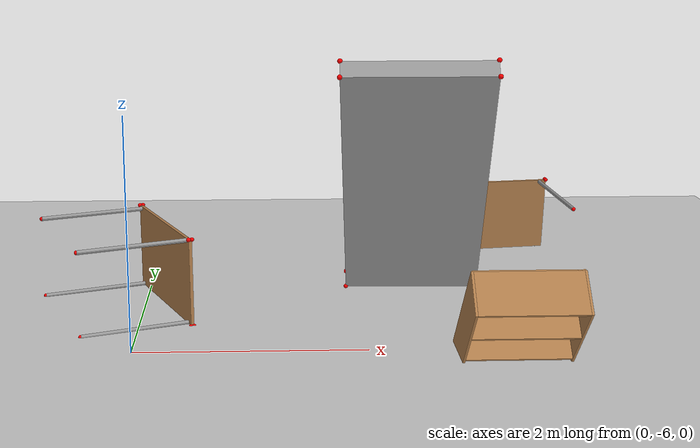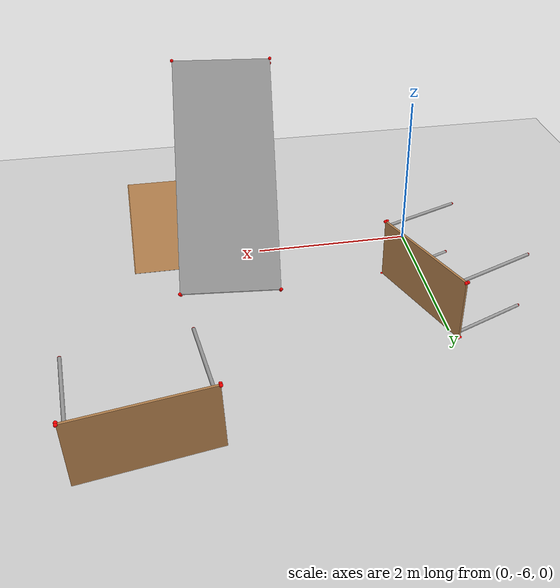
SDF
<sdf version="1.7">
 <world name="tracked_mid360_fastlio_collapse_microdeform_world">
  <model name="ground_plane">
   <static>1</static>
   <link name="link">
    <collision name="collision">
     <laser_retro>24</laser_retro>
     <geometry><plane><normal>0 0 1</normal><size>100 100</size></plane></geometry>
     <surface>
      <contact>
       <collide_bitmask>65535</collide_bitmask>
       <ode><kp>1e+06</kp><kd>10</kd><max_vel>0.05</max_vel><min_depth>0.001</min_depth></ode>
      </contact>
      <friction><ode><mu>2</mu><mu2>1.5</mu2></ode></friction>
     </surface>
     <max_contacts>20</max_contacts>
    </collision>
    <visual name="visual">
     <cast_shadows>0</cast_shadows>
     <geometry><plane><normal>0 0 1</normal><size>100 100</size></plane></geometry>
     <material>
      <script><uri>file://media/materials/scripts/gazebo.material</uri><name>Gazebo/Grey</name></script>
     </material>
    </visual>
   </link>
  </model>
  <model name="bookshelf_0">
   <static>1</static>
   <link name="link">
    <inertial><mass>1</mass></inertial>
    <collision name="back">
     <laser_retro>15</laser_retro>
     <pose>0 0.005 0.6 0 -0 0</pose>
     <geometry><box><size>0.9 0.01 1.2</size></box></geometry>
    </collision>
    <visual name="visual1">
     <pose>0 0.005 0.6 0 -0 0</pose>
     <geometry><box><size>0.9 0.01 1.2</size></box></geometry>
     <material>
      <script><uri>file://media/materials/scripts/gazebo.material</uri><name>Gazebo/Wood</name></script>
     </material>
    </visual>
    <collision name="left_side">
     <laser_retro>15</laser_retro>
     <pose>0.45 -0.195 0.6 0 -0 0</pose>
     <geometry><box><size>0.02 0.4 1.2</size></box></geometry>
    </collision>
    <visual name="visual2">
     <pose>0.45 -0.195 0.6 0 -0 0</pose>
     <geometry><box><size>0.02 0.4 1.2</size></box></geometry>
     <material>
      <script><uri>file://media/materials/scripts/gazebo.material</uri><name>Gazebo/Wood</name></script>
     </material>
    </visual>
    <collision name="right_side">
     <laser_retro>15</laser_retro>
     <pose>-0.45 -0.195 0.6 0 -0 0</pose>
     <geometry><box><size>0.02 0.4 1.2</size></box></geometry>
    </collision>
    <visual name="visual3">
     <pose>-0.45 -0.195 0.6 0 -0 0</pose>
     <geometry><box><size>0.02 0.4 1.2</size></box></geometry>
     <material>
      <script><uri>file://media/materials/scripts/gazebo.material</uri><name>Gazebo/Wood</name></script>
     </material>
    </visual>
    <collision name="bottom">
     <laser_retro>15</laser_retro>
     <pose>0 -0.195 0.03 0 -0 0</pose>
     <geometry><box><size>0.88 0.4 0.06</size></box></geometry>
    </collision>
    <visual name="visual4">
     <pose>0 -0.195 0.03 0 -0 0</pose>
     <geometry><box><size>0.88 0.4 0.06</size></box></geometry>
     <material>
      <script><uri>file://media/materials/scripts/gazebo.material</uri><name>Gazebo/Wood</name></script>
     </material>
    </visual>
    <collision name="top">
     <laser_retro>15</laser_retro>
     <pose>0 -0.195 1.19 0 -0 0</pose>
     <geometry><box><size>0.88 0.4 0.02</size></box></geometry>
    </collision>
    <visual name="visual5">
     <pose>0 -0.195 1.19 0 -0 0</pose>
     <geometry><box><size>0.88 0.4 0.02</size></box></geometry>
     <material>
      <script><uri>file://media/materials/scripts/gazebo.material</uri><name>Gazebo/Wood</name></script>
     </material>
    </visual>
    <collision name="low_shelf">
     <laser_retro>15</laser_retro>
     <pose>0 -0.195 0.43 0 -0 0</pose>
     <geometry><box><size>0.88 0.4 0.02</size></box></geometry>
    </collision>
    <visual name="visual6">
     <pose>0 -0.195 0.43 0 -0 0</pose>
     <geometry><box><size>0.88 0.4 0.02</size></box></geometry>
     <material>
      <script><uri>file://media/materials/scripts/gazebo.material</uri><name>Gazebo/Wood</name></script>
     </material>
    </visual>
    <collision name="high_shelf">
     <laser_retro>15</laser_retro>
     <pose>0 -0.195 0.8 0 -0 0</pose>
     <geometry><box><size>0.88 0.4 0.02</size></box></geometry>
    </collision>
    <visual name="visual7">
     <pose>0 -0.195 0.8 0 -0 0</pose>
     <geometry><box><size>0.88 0.4 0.02</size></box></geometry>
     <material>
      <script><uri>file://media/materials/scripts/gazebo.material</uri><name>Gazebo/Wood</name></script>
     </material>
    </visual>
   </link>
   <pose>3.19942 -5.78488 -0.005007 0.777348 -0 0</pose>
  </model>
  <model name="table">
   <static>0</static>
   <link name="link">
    <collision name="surface">
     <laser_retro>4</laser_retro>
     <pose>0 0 1 0 -0 0</pose>
     <geometry><box><size>1.5 0.8 0.03</size></box></geometry>
     <surface><friction><ode><mu>0.6</mu><mu2>0.6</mu2></ode></friction></surface>
    </collision>
    <visual name="visual1">
     <pose>0 0 1 0 -0 0</pose>
     <geometry><box><size>1.5 0.8 0.03</size></box></geometry>
     <material>
      <script><uri>file://media/materials/scripts/gazebo.material</uri><name>Gazebo/Wood</name></script>
     </material>
    </visual>
    <collision name="front_left_leg">
     <laser_retro>4</laser_retro>
     <pose>0.68 0.38 0.5 0 -0 0</pose>
     <geometry><cylinder><radius>0.02</radius><length>1</length></cylinder></geometry>
    </collision>
    <visual name="front_left_leg">
     <pose>0.68 0.38 0.5 0 -0 0</pose>
     <geometry><cylinder><radius>0.02</radius><length>1</length></cylinder></geometry>
     <material>
      <script><uri>file://media/materials/scripts/gazebo.material</uri><name>Gazebo/Grey</name></script>
     </material>
    </visual>
    <collision name="front_right_leg">
     <laser_retro>4</laser_retro>
     <pose>0.68 -0.38 0.5 0 -0 0</pose>
     <geometry><cylinder><radius>0.02</radius><length>1</length></cylinder></geometry>
    </collision>
    <visual name="front_right_leg">
     <pose>0.68 -0.38 0.5 0 -0 0</pose>
     <geometry><cylinder><radius>0.02</radius><length>1</length></cylinder></geometry>
     <material>
      <script><uri>file://media/materials/scripts/gazebo.material</uri><name>Gazebo/Grey</name></script>
     </material>
    </visual>
    <collision name="back_right_leg">
     <laser_retro>4</laser_retro>
     <pose>-0.68 -0.38 0.5 0 -0 0</pose>
     <geometry><cylinder><radius>0.02</radius><length>1</length></cylinder></geometry>
    </collision>
    <visual name="back_right_leg">
     <pose>-0.68 -0.38 0.5 0 -0 0</pose>
     <geometry><cylinder><radius>0.02</radius><length>1</length></cylinder></geometry>
     <material>
      <script><uri>file://media/materials/scripts/gazebo.material</uri><name>Gazebo/Grey</name></script>
     </material>
    </visual>
    <collision name="back_left_leg">
     <laser_retro>4</laser_retro>
     <pose>-0.68 0.38 0.5 0 -0 0</pose>
     <geometry><cylinder><radius>0.02</radius><length>1</length></cylinder></geometry>
    </collision>
    <visual name="back_left_leg">
     <pose>-0.68 0.38 0.5 0 -0 0</pose>
     <geometry><cylinder><radius>0.02</radius><length>1</length></cylinder></geometry>
     <material>
      <script><uri>file://media/materials/scripts/gazebo.material</uri><name>Gazebo/Grey</name></script>
     </material>
    </visual>
    <visual name="ground_truth_marker_v_000">
     <pose>-0.75 -0.4 0.985 0 -0 0</pose>
     <geometry><sphere><radius>0.02</radius></sphere></geometry>
     <material><ambient>1 0 0 1</ambient><diffuse>1 0 0 1</diffuse><emissive>1 0 0 1</emissive></material>
     <cast_shadows>0</cast_shadows>
    </visual>
    <visual name="ground_truth_marker_v_001">
     <pose>-0.75 -0.4 1.015 0 -0 0</pose>
     <geometry><sphere><radius>0.02</radius></sphere></geometry>
     <material><ambient>1 0 0 1</ambient><diffuse>1 0 0 1</diffuse><emissive>1 0 0 1</emissive></material>
     <cast_shadows>0</cast_shadows>
    </visual>
    <visual name="ground_truth_marker_v_002">
     <pose>-0.75 0.4 0.985 0 -0 0</pose>
     <geometry><sphere><radius>0.02</radius></sphere></geometry>
     <material><ambient>1 0 0 1</ambient><diffuse>1 0 0 1</diffuse><emissive>1 0 0 1</emissive></material>
     <cast_shadows>0</cast_shadows>
    </visual>
    <visual name="ground_truth_marker_v_003">
     <pose>-0.75 0.4 1.015 0 -0 0</pose>
     <geometry><sphere><radius>0.02</radius></sphere></geometry>
     <material><ambient>1 0 0 1</ambient><diffuse>1 0 0 1</diffuse><emissive>1 0 0 1</emissive></material>
     <cast_shadows>0</cast_shadows>
    </visual>
    <visual name="ground_truth_marker_v_004">
     <pose>0.75 -0.4 0.985 0 -0 0</pose>
     <geometry><sphere><radius>0.02</radius></sphere></geometry>
     <material><ambient>1 0 0 1</ambient><diffuse>1 0 0 1</diffuse><emissive>1 0 0 1</emissive></material>
     <cast_shadows>0</cast_shadows>
    </visual>
    <visual name="ground_truth_marker_v_005">
     <pose>0.75 -0.4 1.015 0 -0 0</pose>
     <geometry><sphere><radius>0.02</radius></sphere></geometry>
     <material><ambient>1 0 0 1</ambient><diffuse>1 0 0 1</diffuse><emissive>1 0 0 1</emissive></material>
     <cast_shadows>0</cast_shadows>
    </visual>
    <visual name="ground_truth_marker_v_006">
     <pose>0.75 0.4 0.985 0 -0 0</pose>
     <geometry><sphere><radius>0.02</radius></sphere></geometry>
     <material><ambient>1 0 0 1</ambient><diffuse>1 0 0 1</diffuse><emissive>1 0 0 1</emissive></material>
     <cast_shadows>0</cast_shadows>
    </visual>
    <visual name="ground_truth_marker_v_007">
     <pose>0.75 0.4 1.015 0 -0 0</pose>
     <geometry><sphere><radius>0.02</radius></sphere></geometry>
     <material><ambient>1 0 0 1</ambient><diffuse>1 0 0 1</diffuse><emissive>1 0 0 1</emissive></material>
     <cast_shadows>0</cast_shadows>
    </visual>
    <visual name="ground_truth_marker_v_008">
     <pose>0.68 0.38 0 0 -0 0</pose>
     <geometry><sphere><radius>0.02</radius></sphere></geometry>
     <material><ambient>1 0 0 1</ambient><diffuse>1 0 0 1</diffuse><emissive>1 0 0 1</emissive></material>
     <cast_shadows>0</cast_shadows>
    </visual>
    <visual name="ground_truth_marker_v_009">
     <pose>0.68 -0.38 0 0 -0 0</pose>
     <geometry><sphere><radius>0.02</radius></sphere></geometry>
     <material><ambient>1 0 0 1</ambient><diffuse>1 0 0 1</diffuse><emissive>1 0 0 1</emissive></material>
     <cast_shadows>0</cast_shadows>
    </visual>
    <visual name="ground_truth_marker_v_010">
     <pose>-0.68 -0.38 0 0 -0 0</pose>
     <geometry><sphere><radius>0.02</radius></sphere></geometry>
     <material><ambient>1 0 0 1</ambient><diffuse>1 0 0 1</diffuse><emissive>1 0 0 1</emissive></material>
     <cast_shadows>0</cast_shadows>
    </visual>
    <visual name="ground_truth_marker_v_011">
     <pose>-0.68 0.38 0 0 -0 0</pose>
     <geometry><sphere><radius>0.02</radius></sphere></geometry>
     <material><ambient>1 0 0 1</ambient><diffuse>1 0 0 1</diffuse><emissive>1 0 0 1</emissive></material>
     <cast_shadows>0</cast_shadows>
    </visual>
    <kinematic>1</kinematic>
    <inertial>
     <inertia><ixx>1</ixx><ixy>0</ixy><ixz>0</ixz><iyy>1</iyy><iyz>0</iyz><izz>1</izz></inertia>
     <mass>1</mass>
    </inertial>
   </link>
   <link name="ground_truth_v_000">
    <pose>-0.75 -0.4 0.985 0 -0 0</pose>
    <inertial>
     <mass>1e-06</mass>
     <inertia><ixx>1e-12</ixx><ixy>0</ixy><ixz>0</ixz><iyy>1e-12</iyy><iyz>0</iyz><izz>1e-12</izz></inertia>
    </inertial>
   </link>
   <link name="ground_truth_v_001">
    <pose>-0.75 -0.4 1.015 0 -0 0</pose>
    <inertial>
     <mass>1e-06</mass>
     <inertia><ixx>1e-12</ixx><ixy>0</ixy><ixz>0</ixz><iyy>1e-12</iyy><iyz>0</iyz><izz>1e-12</izz></inertia>
    </inertial>
   </link>
   <link name="ground_truth_v_002">
    <pose>-0.75 0.4 0.985 0 -0 0</pose>
    <inertial>
     <mass>1e-06</mass>
     <inertia><ixx>1e-12</ixx><ixy>0</ixy><ixz>0</ixz><iyy>1e-12</iyy><iyz>0</iyz><izz>1e-12</izz></inertia>
    </inertial>
   </link>
   <link name="ground_truth_v_003">
    <pose>-0.75 0.4 1.015 0 -0 0</pose>
    <inertial>
     <mass>1e-06</mass>
     <inertia><ixx>1e-12</ixx><ixy>0</ixy><ixz>0</ixz><iyy>1e-12</iyy><iyz>0</iyz><izz>1e-12</izz></inertia>
    </inertial>
   </link>
   <link name="ground_truth_v_004">
    <pose>0.75 -0.4 0.985 0 -0 0</pose>
    <inertial>
     <mass>1e-06</mass>
     <inertia><ixx>1e-12</ixx><ixy>0</ixy><ixz>0</ixz><iyy>1e-12</iyy><iyz>0</iyz><izz>1e-12</izz></inertia>
    </inertial>
   </link>
   <link name="ground_truth_v_005">
    <pose>0.75 -0.4 1.015 0 -0 0</pose>
    <inertial>
     <mass>1e-06</mass>
     <inertia><ixx>1e-12</ixx><ixy>0</ixy><ixz>0</ixz><iyy>1e-12</iyy><iyz>0</iyz><izz>1e-12</izz></inertia>
    </inertial>
   </link>
   <link name="ground_truth_v_006">
    <pose>0.75 0.4 0.985 0 -0 0</pose>
    <inertial>
     <mass>1e-06</mass>
     <inertia><ixx>1e-12</ixx><ixy>0</ixy><ixz>0</ixz><iyy>1e-12</iyy><iyz>0</iyz><izz>1e-12</izz></inertia>
    </inertial>
   </link>
   <link name="ground_truth_v_007">
    <pose>0.75 0.4 1.015 0 -0 0</pose>
    <inertial>
     <mass>1e-06</mass>
     <inertia><ixx>1e-12</ixx><ixy>0</ixy><ixz>0</ixz><iyy>1e-12</iyy><iyz>0</iyz><izz>1e-12</izz></inertia>
    </inertial>
   </link>
   <link name="ground_truth_v_008">
    <pose>0.68 0.38 0 0 -0 0</pose>
    <inertial>
     <mass>1e-06</mass>
     <inertia><ixx>1e-12</ixx><ixy>0</ixy><ixz>0</ixz><iyy>1e-12</iyy><iyz>0</iyz><izz>1e-12</izz></inertia>
    </inertial>
   </link>
   <link name="ground_truth_v_009">
    <pose>0.68 -0.38 0 0 -0 0</pose>
    <inertial>
     <mass>1e-06</mass>
     <inertia><ixx>1e-12</ixx><ixy>0</ixy><ixz>0</ixz><iyy>1e-12</iyy><iyz>0</iyz><izz>1e-12</izz></inertia>
    </inertial>
   </link>
   <link name="ground_truth_v_010">
    <pose>-0.68 -0.38 0 0 -0 0</pose>
    <inertial>
     <mass>1e-06</mass>
     <inertia><ixx>1e-12</ixx><ixy>0</ixy><ixz>0</ixz><iyy>1e-12</iyy><iyz>0</iyz><izz>1e-12</izz></inertia>
    </inertial>
   </link>
   <link name="ground_truth_v_011">
    <pose>-0.68 0.38 0 0 -0 0</pose>
    <inertial>
     <mass>1e-06</mass>
     <inertia><ixx>1e-12</ixx><ixy>0</ixy><ixz>0</ixz><iyy>1e-12</iyy><iyz>0</iyz><izz>1e-12</izz></inertia>
    </inertial>
   </link>
   <joint name="ground_truth_v_000_fixed_joint" type="fixed">
    <parent>link</parent>
    <child>ground_truth_v_000</child>
   </joint>
   <joint name="ground_truth_v_001_fixed_joint" type="fixed">
    <parent>link</parent>
    <child>ground_truth_v_001</child>
   </joint>
   <joint name="ground_truth_v_002_fixed_joint" type="fixed">
    <parent>link</parent>
    <child>ground_truth_v_002</child>
   </joint>
   <joint name="ground_truth_v_003_fixed_joint" type="fixed">
    <parent>link</parent>
    <child>ground_truth_v_003</child>
   </joint>
   <joint name="ground_truth_v_004_fixed_joint" type="fixed">
    <parent>link</parent>
    <child>ground_truth_v_004</child>
   </joint>
   <joint name="ground_truth_v_005_fixed_joint" type="fixed">
    <parent>link</parent>
    <child>ground_truth_v_005</child>
   </joint>
   <joint name="ground_truth_v_006_fixed_joint" type="fixed">
    <parent>link</parent>
    <child>ground_truth_v_006</child>
   </joint>
   <joint name="ground_truth_v_007_fixed_joint" type="fixed">
    <parent>link</parent>
    <child>ground_truth_v_007</child>
   </joint>
   <joint name="ground_truth_v_008_fixed_joint" type="fixed">
    <parent>link</parent>
    <child>ground_truth_v_008</child>
   </joint>
   <joint name="ground_truth_v_009_fixed_joint" type="fixed">
    <parent>link</parent>
    <child>ground_truth_v_009</child>
   </joint>
   <joint name="ground_truth_v_010_fixed_joint" type="fixed">
    <parent>link</parent>
    <child>ground_truth_v_010</child>
   </joint>
   <joint name="ground_truth_v_011_fixed_joint" type="fixed">
    <parent>link</parent>
    <child>ground_truth_v_011</child>
   </joint>
   <pose>3.59928 -3.65229 0.265314 -1.48218 0 0.154319</pose>
  </model>
  <model name="lzg_bianwood">
   <link name="link_0">
    <inertial>
     <mass>0.567947</mass>
     <inertia>
      <ixx>0.387852</ixx>
      <ixy>0</ixy>
      <ixz>0</ixz>
      <iyy>0.454669</iyy>
      <iyz>0</iyz>
      <izz>0.0694091</izz>
     </inertia>
    </inertial>
    <pose>0 -3e-06 -0 0.737123 -0 0</pose>
    <visual name="visual">
     <geometry><box><size>1.19964 0.165479 2.85787</size></box></geometry>
     <material>
      <lighting>1</lighting>
      <script><uri>file://media/materials/scripts/gazebo.material</uri><name>Gazebo/Grey</name></script>
      <shader type="pixel"/>
     </material>
    </visual>
    <collision name="collision">
     <laser_retro>9</laser_retro>
     <geometry><box><size>1.19964 0.165479 2.85787</size></box></geometry>
     <surface>
      <friction>
       <ode><mu>1</mu><mu2>1</mu2><fdir1>0 0 0</fdir1><slip1>0</slip1><slip2>0</slip2></ode>
       <torsional>
        <coefficient>1</coefficient>
        <patch_radius>0</patch_radius>
        <surface_radius>0</surface_radius>
        <use_patch_radius>1</use_patch_radius>
        <ode><slip>0</slip></ode>
       </torsional>
      </friction>
      <bounce><restitution_coefficient>0</restitution_coefficient><threshold>1e+06</threshold></bounce>
      <contact>
       <collide_without_contact>0</collide_without_contact>
       <collide_without_contact_bitmask>1</collide_without_contact_bitmask>
       <collide_bitmask>1</collide_bitmask>
       <ode>
        <soft_cfm>0</soft_cfm>
        <soft_erp>0.2</soft_erp>
        <kp>1e+13</kp>
        <kd>1</kd>
        <max_vel>0.01</max_vel>
        <min_depth>0</min_depth>
       </ode>
       <bullet>
        <split_impulse>1</split_impulse>
        <split_impulse_penetration_threshold>-0.01</split_impulse_penetration_threshold>
        <soft_cfm>0</soft_cfm>
        <soft_erp>0.2</soft_erp>
        <kp>1e+13</kp>
        <kd>1</kd>
       </bullet>
      </contact>
     </surface>
    </collision>
    <visual name="ground_truth_marker_v_000">
     <pose>-0.59982 -0.08274 -1.42894 0 -0 0</pose>
     <geometry><sphere><radius>0.02</radius></sphere></geometry>
     <material><ambient>1 0 0 1</ambient><diffuse>1 0 0 1</diffuse><emissive>1 0 0 1</emissive></material>
     <cast_shadows>0</cast_shadows>
    </visual>
    <visual name="ground_truth_marker_v_001">
     <pose>-0.59982 -0.08274 1.42894 0 -0 0</pose>
     <geometry><sphere><radius>0.02</radius></sphere></geometry>
     <material><ambient>1 0 0 1</ambient><diffuse>1 0 0 1</diffuse><emissive>1 0 0 1</emissive></material>
     <cast_shadows>0</cast_shadows>
    </visual>
    <visual name="ground_truth_marker_v_002">
     <pose>-0.59982 0.08274 -1.42894 0 -0 0</pose>
     <geometry><sphere><radius>0.02</radius></sphere></geometry>
     <material><ambient>1 0 0 1</ambient><diffuse>1 0 0 1</diffuse><emissive>1 0 0 1</emissive></material>
     <cast_shadows>0</cast_shadows>
    </visual>
    <visual name="ground_truth_marker_v_003">
     <pose>-0.59982 0.08274 1.42894 0 -0 0</pose>
     <geometry><sphere><radius>0.02</radius></sphere></geometry>
     <material><ambient>1 0 0 1</ambient><diffuse>1 0 0 1</diffuse><emissive>1 0 0 1</emissive></material>
     <cast_shadows>0</cast_shadows>
    </visual>
    <visual name="ground_truth_marker_v_004">
     <pose>0.59982 -0.08274 -1.42894 0 -0 0</pose>
     <geometry><sphere><radius>0.02</radius></sphere></geometry>
     <material><ambient>1 0 0 1</ambient><diffuse>1 0 0 1</diffuse><emissive>1 0 0 1</emissive></material>
     <cast_shadows>0</cast_shadows>
    </visual>
    <visual name="ground_truth_marker_v_005">
     <pose>0.59982 -0.08274 1.42894 0 -0 0</pose>
     <geometry><sphere><radius>0.02</radius></sphere></geometry>
     <material><ambient>1 0 0 1</ambient><diffuse>1 0 0 1</diffuse><emissive>1 0 0 1</emissive></material>
     <cast_shadows>0</cast_shadows>
    </visual>
    <visual name="ground_truth_marker_v_006">
     <pose>0.59982 0.08274 -1.42894 0 -0 0</pose>
     <geometry><sphere><radius>0.02</radius></sphere></geometry>
     <material><ambient>1 0 0 1</ambient><diffuse>1 0 0 1</diffuse><emissive>1 0 0 1</emissive></material>
     <cast_shadows>0</cast_shadows>
    </visual>
    <visual name="ground_truth_marker_v_007">
     <pose>0.59982 0.08274 1.42894 0 -0 0</pose>
     <geometry><sphere><radius>0.02</radius></sphere></geometry>
     <material><ambient>1 0 0 1</ambient><diffuse>1 0 0 1</diffuse><emissive>1 0 0 1</emissive></material>
     <cast_shadows>0</cast_shadows>
    </visual>
    <kinematic>1</kinematic>
   </link>
   <link name="ground_truth_v_000">
    <pose>-0.59982 0.89921 -1.1136 0 -0 0</pose>
    <inertial>
     <mass>1e-06</mass>
     <inertia><ixx>1e-12</ixx><ixy>0</ixy><ixz>0</ixz><iyy>1e-12</iyy><iyz>0</iyz><izz>1e-12</izz></inertia>
    </inertial>
   </link>
   <link name="ground_truth_v_001">
    <pose>-0.59982 -1.02174 1.00238 0 -0 0</pose>
    <inertial>
     <mass>1e-06</mass>
     <inertia><ixx>1e-12</ixx><ixy>0</ixy><ixz>0</ixz><iyy>1e-12</iyy><iyz>0</iyz><izz>1e-12</izz></inertia>
    </inertial>
   </link>
   <link name="ground_truth_v_002">
    <pose>-0.59982 1.02173 -1.00238 0 -0 0</pose>
    <inertial>
     <mass>1e-06</mass>
     <inertia><ixx>1e-12</ixx><ixy>0</ixy><ixz>0</ixz><iyy>1e-12</iyy><iyz>0</iyz><izz>1e-12</izz></inertia>
    </inertial>
   </link>
   <link name="ground_truth_v_003">
    <pose>-0.59982 -0.899216 1.1136 0 -0 0</pose>
    <inertial>
     <mass>1e-06</mass>
     <inertia><ixx>1e-12</ixx><ixy>0</ixy><ixz>0</ixz><iyy>1e-12</iyy><iyz>0</iyz><izz>1e-12</izz></inertia>
    </inertial>
   </link>
   <link name="ground_truth_v_004">
    <pose>0.59982 0.89921 -1.1136 0 -0 0</pose>
    <inertial>
     <mass>1e-06</mass>
     <inertia><ixx>1e-12</ixx><ixy>0</ixy><ixz>0</ixz><iyy>1e-12</iyy><iyz>0</iyz><izz>1e-12</izz></inertia>
    </inertial>
   </link>
   <link name="ground_truth_v_005">
    <pose>0.59982 -1.02174 1.00238 0 -0 0</pose>
    <inertial>
     <mass>1e-06</mass>
     <inertia><ixx>1e-12</ixx><ixy>0</ixy><ixz>0</ixz><iyy>1e-12</iyy><iyz>0</iyz><izz>1e-12</izz></inertia>
    </inertial>
   </link>
   <link name="ground_truth_v_006">
    <pose>0.59982 1.02173 -1.00238 0 -0 0</pose>
    <inertial>
     <mass>1e-06</mass>
     <inertia><ixx>1e-12</ixx><ixy>0</ixy><ixz>0</ixz><iyy>1e-12</iyy><iyz>0</iyz><izz>1e-12</izz></inertia>
    </inertial>
   </link>
   <link name="ground_truth_v_007">
    <pose>0.59982 -0.899216 1.1136 0 -0 0</pose>
    <inertial>
     <mass>1e-06</mass>
     <inertia><ixx>1e-12</ixx><ixy>0</ixy><ixz>0</ixz><iyy>1e-12</iyy><iyz>0</iyz><izz>1e-12</izz></inertia>
    </inertial>
   </link>
   <joint name="ground_truth_v_000_fixed_joint" type="fixed">
    <parent>link_0</parent>
    <child>ground_truth_v_000</child>
   </joint>
   <joint name="ground_truth_v_001_fixed_joint" type="fixed">
    <parent>link_0</parent>
    <child>ground_truth_v_001</child>
   </joint>
   <joint name="ground_truth_v_002_fixed_joint" type="fixed">
    <parent>link_0</parent>
    <child>ground_truth_v_002</child>
   </joint>
   <joint name="ground_truth_v_003_fixed_joint" type="fixed">
    <parent>link_0</parent>
    <child>ground_truth_v_003</child>
   </joint>
   <joint name="ground_truth_v_004_fixed_joint" type="fixed">
    <parent>link_0</parent>
    <child>ground_truth_v_004</child>
   </joint>
   <joint name="ground_truth_v_005_fixed_joint" type="fixed">
    <parent>link_0</parent>
    <child>ground_truth_v_005</child>
   </joint>
   <joint name="ground_truth_v_006_fixed_joint" type="fixed">
    <parent>link_0</parent>
    <child>ground_truth_v_006</child>
   </joint>
   <joint name="ground_truth_v_007_fixed_joint" type="fixed">
    <parent>link_0</parent>
    <child>ground_truth_v_007</child>
   </joint>
   <static>0</static>
   <pose>2.38843 -5.74498 1.36167 -0.025643 -0.009727 -0.080351</pose>
  </model>
  <model name="table_clone">
   <static>0</static>
   <link name="link">
    <collision name="surface">
     <laser_retro>7</laser_retro>
     <pose>0 0 1 0 -0 0</pose>
     <geometry><box><size>1.5 0.8 0.03</size></box></geometry>
     <surface><friction><ode><mu>0.6</mu><mu2>0.6</mu2></ode></friction></surface>
    </collision>
    <visual name="visual1">
     <pose>0 0 1 0 -0 0</pose>
     <geometry><box><size>1.5 0.8 0.03</size></box></geometry>
     <material>
      <script><uri>file://media/materials/scripts/gazebo.material</uri><name>Gazebo/Wood</name></script>
     </material>
    </visual>
    <collision name="front_left_leg">
     <laser_retro>7</laser_retro>
     <pose>0.68 0.38 0.5 0 -0 0</pose>
     <geometry><cylinder><radius>0.02</radius><length>1</length></cylinder></geometry>
    </collision>
    <visual name="front_left_leg">
     <pose>0.68 0.38 0.5 0 -0 0</pose>
     <geometry><cylinder><radius>0.02</radius><length>1</length></cylinder></geometry>
     <material>
      <script><uri>file://media/materials/scripts/gazebo.material</uri><name>Gazebo/Grey</name></script>
     </material>
    </visual>
    <collision name="front_right_leg">
     <laser_retro>7</laser_retro>
     <pose>0.68 -0.38 0.5 0 -0 0</pose>
     <geometry><cylinder><radius>0.02</radius><length>1</length></cylinder></geometry>
    </collision>
    <visual name="front_right_leg">
     <pose>0.68 -0.38 0.5 0 -0 0</pose>
     <geometry><cylinder><radius>0.02</radius><length>1</length></cylinder></geometry>
     <material>
      <script><uri>file://media/materials/scripts/gazebo.material</uri><name>Gazebo/Grey</name></script>
     </material>
    </visual>
    <collision name="back_right_leg">
     <laser_retro>7</laser_retro>
     <pose>-0.68 -0.38 0.5 0 -0 0</pose>
     <geometry><cylinder><radius>0.02</radius><length>1</length></cylinder></geometry>
    </collision>
    <visual name="back_right_leg">
     <pose>-0.68 -0.38 0.5 0 -0 0</pose>
     <geometry><cylinder><radius>0.02</radius><length>1</length></cylinder></geometry>
     <material>
      <script><uri>file://media/materials/scripts/gazebo.material</uri><name>Gazebo/Grey</name></script>
     </material>
    </visual>
    <collision name="back_left_leg">
     <laser_retro>7</laser_retro>
     <pose>-0.68 0.38 0.5 0 -0 0</pose>
     <geometry><cylinder><radius>0.02</radius><length>1</length></cylinder></geometry>
    </collision>
    <visual name="back_left_leg">
     <pose>-0.68 0.38 0.5 0 -0 0</pose>
     <geometry><cylinder><radius>0.02</radius><length>1</length></cylinder></geometry>
     <material>
      <script><uri>file://media/materials/scripts/gazebo.material</uri><name>Gazebo/Grey</name></script>
     </material>
    </visual>
    <visual name="ground_truth_marker_v_000">
     <pose>-0.75 -0.4 0.985 0 -0 0</pose>
     <geometry><sphere><radius>0.02</radius></sphere></geometry>
     <material><ambient>1 0 0 1</ambient><diffuse>1 0 0 1</diffuse><emissive>1 0 0 1</emissive></material>
     <cast_shadows>0</cast_shadows>
    </visual>
    <visual name="ground_truth_marker_v_001">
     <pose>-0.75 -0.4 1.015 0 -0 0</pose>
     <geometry><sphere><radius>0.02</radius></sphere></geometry>
     <material><ambient>1 0 0 1</ambient><diffuse>1 0 0 1</diffuse><emissive>1 0 0 1</emissive></material>
     <cast_shadows>0</cast_shadows>
    </visual>
    <visual name="ground_truth_marker_v_002">
     <pose>-0.75 0.4 0.985 0 -0 0</pose>
     <geometry><sphere><radius>0.02</radius></sphere></geometry>
     <material><ambient>1 0 0 1</ambient><diffuse>1 0 0 1</diffuse><emissive>1 0 0 1</emissive></material>
     <cast_shadows>0</cast_shadows>
    </visual>
    <visual name="ground_truth_marker_v_003">
     <pose>-0.75 0.4 1.015 0 -0 0</pose>
     <geometry><sphere><radius>0.02</radius></sphere></geometry>
     <material><ambient>1 0 0 1</ambient><diffuse>1 0 0 1</diffuse><emissive>1 0 0 1</emissive></material>
     <cast_shadows>0</cast_shadows>
    </visual>
    <visual name="ground_truth_marker_v_004">
     <pose>0.75 -0.4 0.985 0 -0 0</pose>
     <geometry><sphere><radius>0.02</radius></sphere></geometry>
     <material><ambient>1 0 0 1</ambient><diffuse>1 0 0 1</diffuse><emissive>1 0 0 1</emissive></material>
     <cast_shadows>0</cast_shadows>
    </visual>
    <visual name="ground_truth_marker_v_005">
     <pose>0.75 -0.4 1.015 0 -0 0</pose>
     <geometry><sphere><radius>0.02</radius></sphere></geometry>
     <material><ambient>1 0 0 1</ambient><diffuse>1 0 0 1</diffuse><emissive>1 0 0 1</emissive></material>
     <cast_shadows>0</cast_shadows>
    </visual>
    <visual name="ground_truth_marker_v_006">
     <pose>0.75 0.4 0.985 0 -0 0</pose>
     <geometry><sphere><radius>0.02</radius></sphere></geometry>
     <material><ambient>1 0 0 1</ambient><diffuse>1 0 0 1</diffuse><emissive>1 0 0 1</emissive></material>
     <cast_shadows>0</cast_shadows>
    </visual>
    <visual name="ground_truth_marker_v_007">
     <pose>0.75 0.4 1.015 0 -0 0</pose>
     <geometry><sphere><radius>0.02</radius></sphere></geometry>
     <material><ambient>1 0 0 1</ambient><diffuse>1 0 0 1</diffuse><emissive>1 0 0 1</emissive></material>
     <cast_shadows>0</cast_shadows>
    </visual>
    <visual name="ground_truth_marker_v_008">
     <pose>0.68 0.38 0 0 -0 0</pose>
     <geometry><sphere><radius>0.02</radius></sphere></geometry>
     <material><ambient>1 0 0 1</ambient><diffuse>1 0 0 1</diffuse><emissive>1 0 0 1</emissive></material>
     <cast_shadows>0</cast_shadows>
    </visual>
    <visual name="ground_truth_marker_v_009">
     <pose>0.68 -0.38 0 0 -0 0</pose>
     <geometry><sphere><radius>0.02</radius></sphere></geometry>
     <material><ambient>1 0 0 1</ambient><diffuse>1 0 0 1</diffuse><emissive>1 0 0 1</emissive></material>
     <cast_shadows>0</cast_shadows>
    </visual>
    <visual name="ground_truth_marker_v_010">
     <pose>-0.68 -0.38 0 0 -0 0</pose>
     <geometry><sphere><radius>0.02</radius></sphere></geometry>
     <material><ambient>1 0 0 1</ambient><diffuse>1 0 0 1</diffuse><emissive>1 0 0 1</emissive></material>
     <cast_shadows>0</cast_shadows>
    </visual>
    <visual name="ground_truth_marker_v_011">
     <pose>-0.68 0.38 0 0 -0 0</pose>
     <geometry><sphere><radius>0.02</radius></sphere></geometry>
     <material><ambient>1 0 0 1</ambient><diffuse>1 0 0 1</diffuse><emissive>1 0 0 1</emissive></material>
     <cast_shadows>0</cast_shadows>
    </visual>
    <kinematic>1</kinematic>
    <inertial>
     <inertia><ixx>1</ixx><ixy>0</ixy><ixz>0</ixz><iyy>1</iyy><iyz>0</iyz><izz>1</izz></inertia>
     <mass>1</mass>
    </inertial>
   </link>
   <link name="ground_truth_v_000">
    <pose>-0.75 -0.4 0.985 0 -0 0</pose>
    <inertial>
     <mass>1e-06</mass>
     <inertia><ixx>1e-12</ixx><ixy>0</ixy><ixz>0</ixz><iyy>1e-12</iyy><iyz>0</iyz><izz>1e-12</izz></inertia>
    </inertial>
   </link>
   <link name="ground_truth_v_001">
    <pose>-0.75 -0.4 1.015 0 -0 0</pose>
    <inertial>
     <mass>1e-06</mass>
     <inertia><ixx>1e-12</ixx><ixy>0</ixy><ixz>0</ixz><iyy>1e-12</iyy><iyz>0</iyz><izz>1e-12</izz></inertia>
    </inertial>
   </link>
   <link name="ground_truth_v_002">
    <pose>-0.75 0.4 0.985 0 -0 0</pose>
    <inertial>
     <mass>1e-06</mass>
     <inertia><ixx>1e-12</ixx><ixy>0</ixy><ixz>0</ixz><iyy>1e-12</iyy><iyz>0</iyz><izz>1e-12</izz></inertia>
    </inertial>
   </link>
   <link name="ground_truth_v_003">
    <pose>-0.75 0.4 1.015 0 -0 0</pose>
    <inertial>
     <mass>1e-06</mass>
     <inertia><ixx>1e-12</ixx><ixy>0</ixy><ixz>0</ixz><iyy>1e-12</iyy><iyz>0</iyz><izz>1e-12</izz></inertia>
    </inertial>
   </link>
   <link name="ground_truth_v_004">
    <pose>0.75 -0.4 0.985 0 -0 0</pose>
    <inertial>
     <mass>1e-06</mass>
     <inertia><ixx>1e-12</ixx><ixy>0</ixy><ixz>0</ixz><iyy>1e-12</iyy><iyz>0</iyz><izz>1e-12</izz></inertia>
    </inertial>
   </link>
   <link name="ground_truth_v_005">
    <pose>0.75 -0.4 1.015 0 -0 0</pose>
    <inertial>
     <mass>1e-06</mass>
     <inertia><ixx>1e-12</ixx><ixy>0</ixy><ixz>0</ixz><iyy>1e-12</iyy><iyz>0</iyz><izz>1e-12</izz></inertia>
    </inertial>
   </link>
   <link name="ground_truth_v_006">
    <pose>0.75 0.4 0.985 0 -0 0</pose>
    <inertial>
     <mass>1e-06</mass>
     <inertia><ixx>1e-12</ixx><ixy>0</ixy><ixz>0</ixz><iyy>1e-12</iyy><iyz>0</iyz><izz>1e-12</izz></inertia>
    </inertial>
   </link>
   <link name="ground_truth_v_007">
    <pose>0.75 0.4 1.015 0 -0 0</pose>
    <inertial>
     <mass>1e-06</mass>
     <inertia><ixx>1e-12</ixx><ixy>0</ixy><ixz>0</ixz><iyy>1e-12</iyy><iyz>0</iyz><izz>1e-12</izz></inertia>
    </inertial>
   </link>
   <link name="ground_truth_v_008">
    <pose>0.68 0.38 0 0 -0 0</pose>
    <inertial>
     <mass>1e-06</mass>
     <inertia><ixx>1e-12</ixx><ixy>0</ixy><ixz>0</ixz><iyy>1e-12</iyy><iyz>0</iyz><izz>1e-12</izz></inertia>
    </inertial>
   </link>
   <link name="ground_truth_v_009">
    <pose>0.68 -0.38 0 0 -0 0</pose>
    <inertial>
     <mass>1e-06</mass>
     <inertia><ixx>1e-12</ixx><ixy>0</ixy><ixz>0</ixz><iyy>1e-12</iyy><iyz>0</iyz><izz>1e-12</izz></inertia>
    </inertial>
   </link>
   <link name="ground_truth_v_010">
    <pose>-0.68 -0.38 0 0 -0 0</pose>
    <inertial>
     <mass>1e-06</mass>
     <inertia><ixx>1e-12</ixx><ixy>0</ixy><ixz>0</ixz><iyy>1e-12</iyy><iyz>0</iyz><izz>1e-12</izz></inertia>
    </inertial>
   </link>
   <link name="ground_truth_v_011">
    <pose>-0.68 0.38 0 0 -0 0</pose>
    <inertial>
     <mass>1e-06</mass>
     <inertia><ixx>1e-12</ixx><ixy>0</ixy><ixz>0</ixz><iyy>1e-12</iyy><iyz>0</iyz><izz>1e-12</izz></inertia>
    </inertial>
   </link>
   <joint name="ground_truth_v_000_fixed_joint" type="fixed">
    <parent>link</parent>
    <child>ground_truth_v_000</child>
   </joint>
   <joint name="ground_truth_v_001_fixed_joint" type="fixed">
    <parent>link</parent>
    <child>ground_truth_v_001</child>
   </joint>
   <joint name="ground_truth_v_002_fixed_joint" type="fixed">
    <parent>link</parent>
    <child>ground_truth_v_002</child>
   </joint>
   <joint name="ground_truth_v_003_fixed_joint" type="fixed">
    <parent>link</parent>
    <child>ground_truth_v_003</child>
   </joint>
   <joint name="ground_truth_v_004_fixed_joint" type="fixed">
    <parent>link</parent>
    <child>ground_truth_v_004</child>
   </joint>
   <joint name="ground_truth_v_005_fixed_joint" type="fixed">
    <parent>link</parent>
    <child>ground_truth_v_005</child>
   </joint>
   <joint name="ground_truth_v_006_fixed_joint" type="fixed">
    <parent>link</parent>
    <child>ground_truth_v_006</child>
   </joint>
   <joint name="ground_truth_v_007_fixed_joint" type="fixed">
    <parent>link</parent>
    <child>ground_truth_v_007</child>
   </joint>
   <joint name="ground_truth_v_008_fixed_joint" type="fixed">
    <parent>link</parent>
    <child>ground_truth_v_008</child>
   </joint>
   <joint name="ground_truth_v_009_fixed_joint" type="fixed">
    <parent>link</parent>
    <child>ground_truth_v_009</child>
   </joint>
   <joint name="ground_truth_v_010_fixed_joint" type="fixed">
    <parent>link</parent>
    <child>ground_truth_v_010</child>
   </joint>
   <joint name="ground_truth_v_011_fixed_joint" type="fixed">
    <parent>link</parent>
    <child>ground_truth_v_011</child>
   </joint>
   <pose>-0.73519 -4.93055 0.377515 -1.56251 0.0037 -1.18956</pose>
  </model>
 </world>
</sdf>
